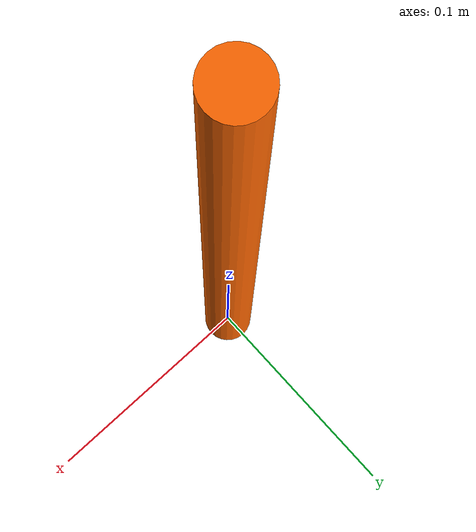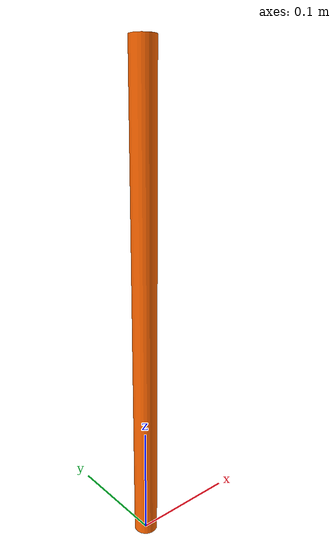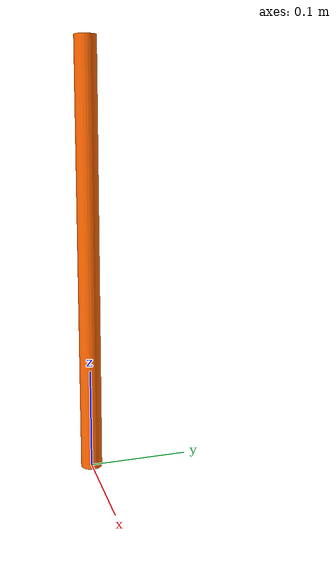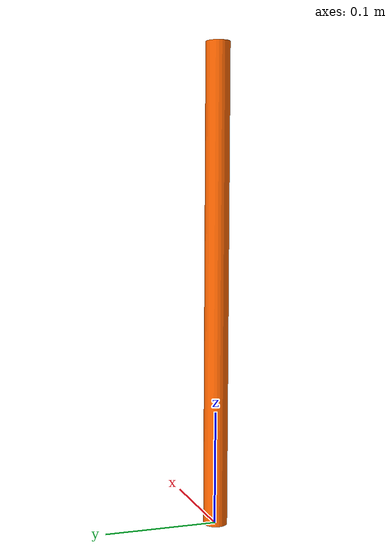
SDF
<?xml version="1.0"?>
<!-- the cone of the car: a tube, 1.05 cm of radius, 42 cm tall -->
<sdf version="1.9">
  <model name="cone">
    <static>true</static>
    <link name="link">
      <pose>0 0 0.21 0 0 0</pose>
      <collision name="c"><geometry><cylinder><radius>0.0105</radius><length>0.42</length></cylinder></geometry></collision>
      <visual name="v">
        <geometry><cylinder><radius>0.0105</radius><length>0.42</length></cylinder></geometry>
        <material><ambient>1 0.4 0 1</ambient><diffuse>1 0.4 0 1</diffuse></material>
      </visual>
    </link>
  </model>
</sdf>
